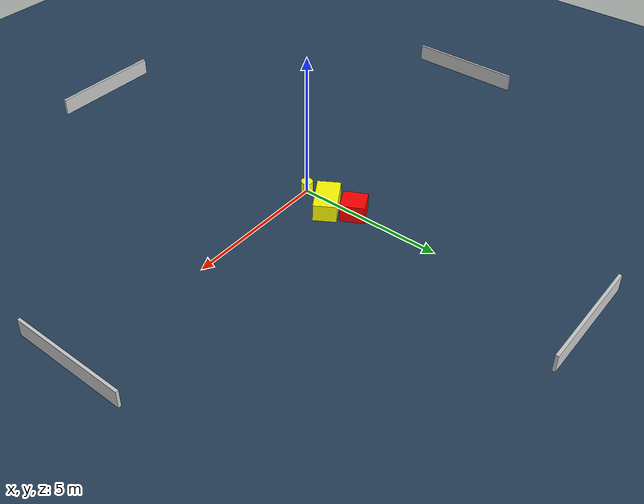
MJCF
<?xml version="1.0" ?>
<mujoco model="generated_environment">
  <option timestep="0.01" integrator="RK4" cone="elliptic"/>
  <default>
    <geom density="1"/>
  </default>
  <asset>
    <texture builtin="gradient" height="3072" name="skybox" rgb1="0.3 0.5 0.7" rgb2="0 0 0" type="skybox" width="512"/>
    <texture builtin="checker" height="300" name="groundplane" rgb1="0.2 0.3 0.4" rgb2="0.1 0.2 0.3" type="2d" width="300"/>
    <material name="groundplane" reflectance="0.2" texrepeat="5 5" texture="groundplane"/>
  </asset>
  <worldbody>
    <light dir="0 0 -1" directional="true" pos="0 0 1.5"/>
    <geom condim="3" friction="0.5 0.005 0.001" material="groundplane" name="floor" pos="0 0 0" size="0 0 0.05" type="plane"/>
    <body name="walls">
      <geom name="wall_1" condim="4" pos="-10.0 0.0 0.3" rgba="0.800000011920929 0.800000011920929 0.800000011920929 1.0" size="0.05 2.0 0.3" type="box"/>
      <geom name="wall_2" condim="4" pos="10.0 0.0 0.3" rgba="0.800000011920929 0.800000011920929 0.800000011920929 1.0" size="0.05 2.0 0.3" type="box"/>
      <geom name="wall_3" condim="4" pos="0.0 -10.0 0.3" rgba="0.800000011920929 0.800000011920929 0.800000011920929 1.0" size="2.0 0.05 0.3" type="box"/>
      <geom name="wall_4" condim="4" pos="0.0 10.0 0.3" rgba="0.800000011920929 0.800000011920929 0.800000011920929 1.0" size="2.0 0.05 0.3" type="box"/>
    </body>
    <body name="robot">
      <joint name="joint_x" type="slide" pos="0 0 0" axis="1 0 0"/>
      <joint name="joint_y" type="slide" pos="0 0 0" axis="0 1 0"/>
      <geom name="robot" type="cylinder" pos="0.0 0.0 0.2" size="0.2 0.2 0.0" mass="5.0" friction="1.0 0.005 0.0001" condim="4" rgba="1.0 1.0 0.0 1.0"/>
    </body>
    <body name="obstacle_1_movable">
      <geom name="obstacle_1_movable" condim="4" pos="0.3350407834009962 1.0998661115496704 0.3" euler="0 0 301.62036613773233" friction="0.0 0.005 0.001" rgba="1.0 1.0 0.0 1.0" size="0.39074082978822894 0.6655650164535366 0.3" type="box" mass="0.1"/>
      <joint type="free"/>
    </body>
    <body name="obstacle_2_static">
      <geom name="obstacle_2_static" condim="4" pos="0.03821486147336097 1.9602242921560107 0.3" euler="0 0 297.6053903793831" friction="0.0 0.005 0.001" rgba="1.0 0.0 0.0 1.0" size="0.40909744221881134 0.40129175890344004 0.3" type="box"/>
    </body>
  </worldbody>
  <actuator>
    <motor name="actuator_x" joint="joint_x" gear="1" ctrlrange="-1 1"/>
    <motor name="actuator_y" joint="joint_y" gear="1" ctrlrange="-1 1"/>
  </actuator>
</mujoco>
